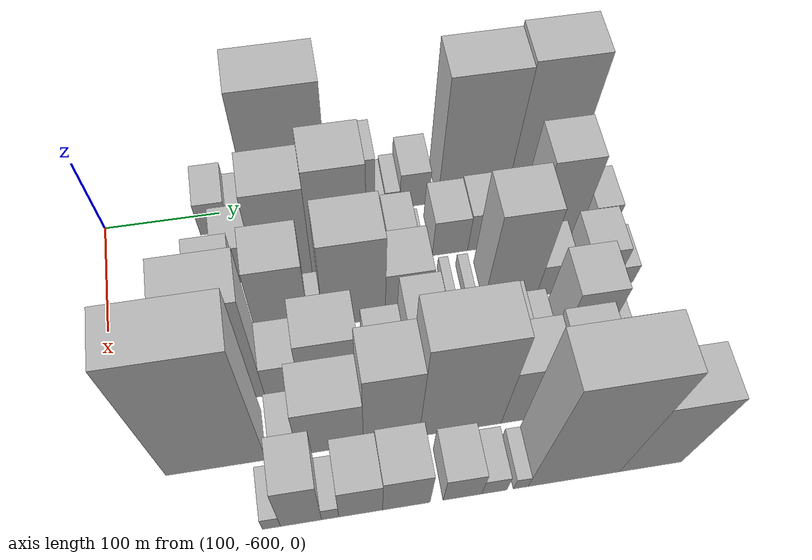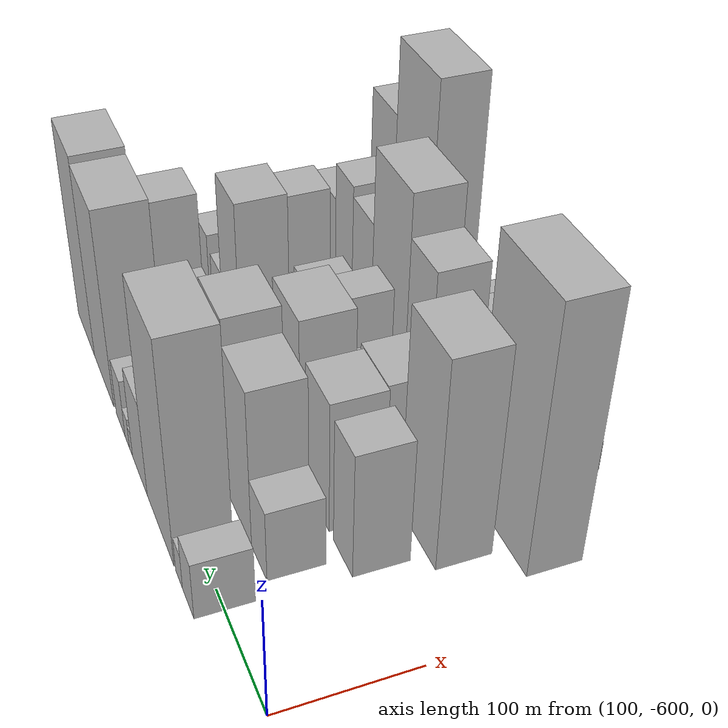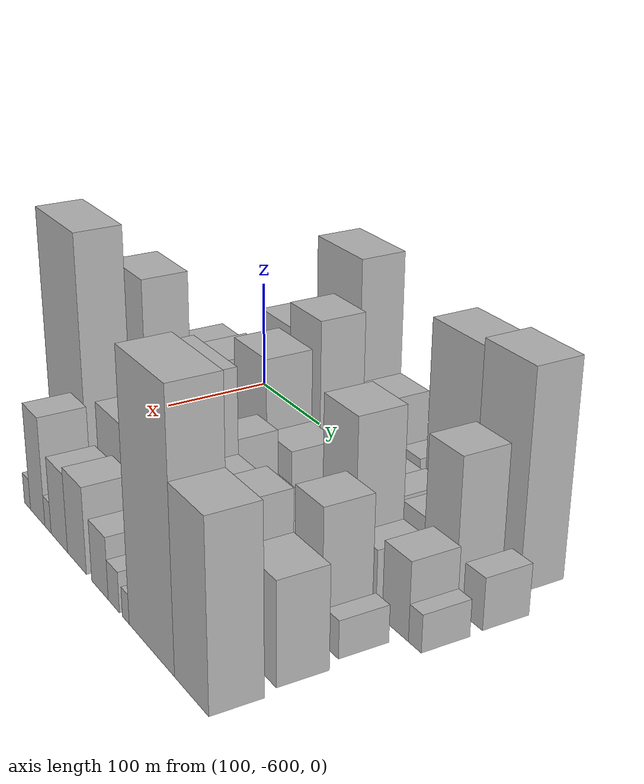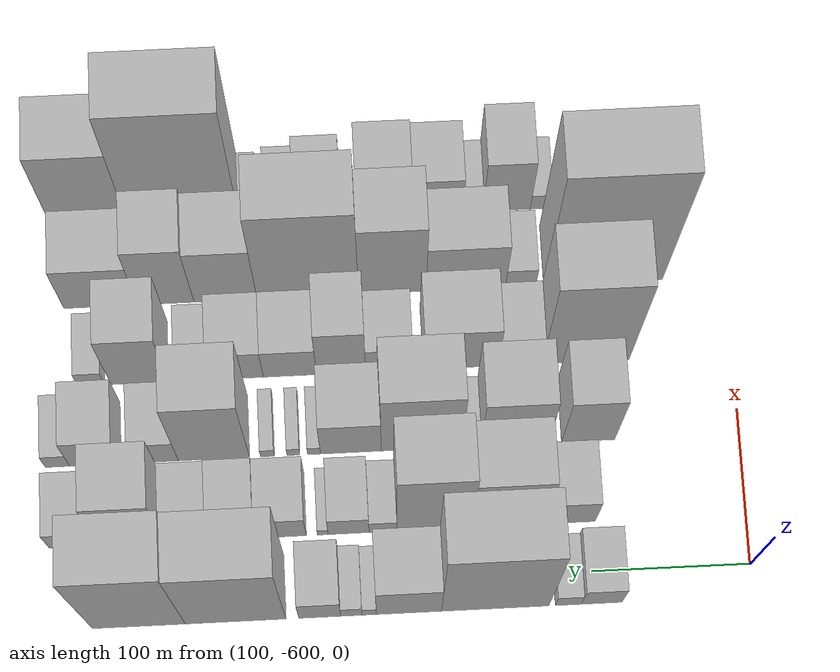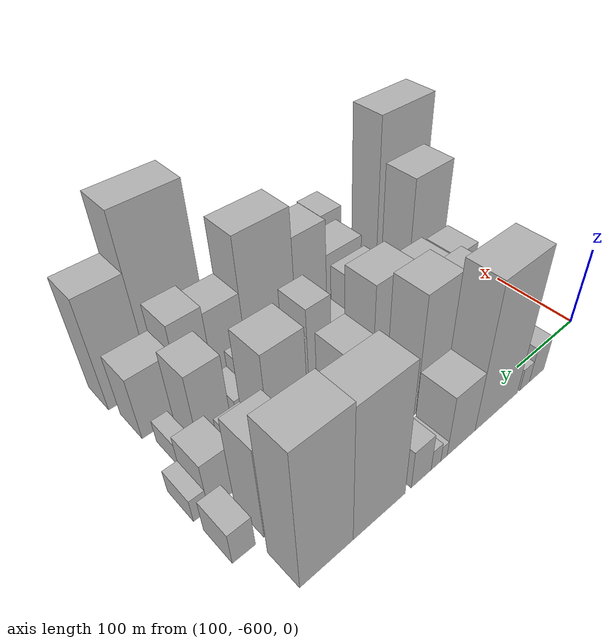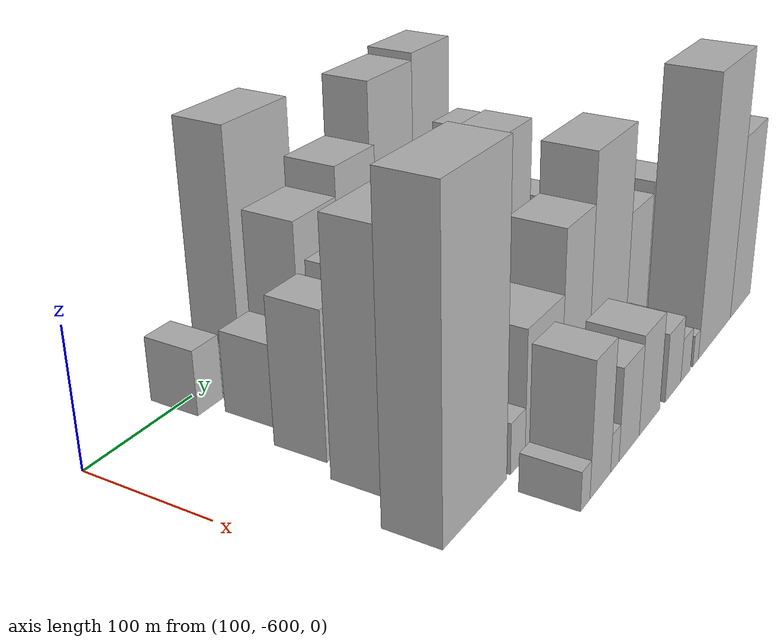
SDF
<sdf version="1.6">
 <world name="default">
  <model name="building_11">
   <static>1</static>
   <pose>100.0000 -504.7542 0 0.000000 0.000000 0.000000</pose>
   <link name="link">
    <pose>0 0 24.00 0 0 0</pose>
    <collision name="collision"><geometry><box><size>40.0000 25.6417 48.0000</size></box></geometry></collision>
    <visual name="visual">
     <cast_shadows>0</cast_shadows>
     <geometry><box><size>40.0000 25.6417 48.0000</size></box></geometry>
     <material>
      <script>
       <uri>model://HANNAS_wall/materials/scripts</uri>
       <uri>model://HANNAS_wall/materials/textures</uri>
       <name>vrc/HANNAS_wall</name>
      </script>
     </material>
    </visual>
   </link>
  </model>
  <model name="building_12">
   <static>1</static>
   <pose>100.0000 -483.8024 0 0.000000 0.000000 0.000000</pose>
   <link name="link">
    <pose>0 0 15.00 0 0 0</pose>
    <collision name="collision"><geometry><box><size>40.0000 16.2619 30.0000</size></box></geometry></collision>
    <visual name="visual">
     <cast_shadows>0</cast_shadows>
     <geometry><box><size>40.0000 16.2619 30.0000</size></box></geometry>
     <material>
      <script>
       <uri>model://HANNAS_wall/materials/scripts</uri>
       <uri>model://HANNAS_wall/materials/textures</uri>
       <name>vrc/HANNAS_wall</name>
      </script>
     </material>
    </visual>
   </link>
  </model>
  <model name="building_13">
   <static>1</static>
   <pose>100.0000 -437.9912 0 0.000000 0.000000 0.000000</pose>
   <link name="link">
    <pose>0 0 93.00 0 0 0</pose>
    <collision name="collision"><geometry><box><size>40.0000 67.3604 186.0000</size></box></geometry></collision>
    <visual name="visual">
     <cast_shadows>0</cast_shadows>
     <geometry><box><size>40.0000 67.3604 186.0000</size></box></geometry>
     <material>
      <script>
       <uri>model://HANNAS_wall/materials/scripts</uri>
       <uri>model://HANNAS_wall/materials/textures</uri>
       <name>vrc/HANNAS_wall</name>
      </script>
     </material>
    </visual>
   </link>
  </model>
  <model name="building_14">
   <static>1</static>
   <pose>100.0000 -383.9383 0 0.000000 0.000000 0.000000</pose>
   <link name="link">
    <pose>0 0 40.50 0 0 0</pose>
    <collision name="collision"><geometry><box><size>40.0000 40.7455 81.0000</size></box></geometry></collision>
    <visual name="visual">
     <cast_shadows>0</cast_shadows>
     <geometry><box><size>40.0000 40.7455 81.0000</size></box></geometry>
     <material>
      <script>
       <uri>model://HANNAS_wall/materials/scripts</uri>
       <uri>model://HANNAS_wall/materials/textures</uri>
       <name>vrc/HANNAS_wall</name>
      </script>
     </material>
    </visual>
   </link>
  </model>
  <model name="building_15">
   <static>1</static>
   <pose>100.0000 -359.0882 0 0.000000 0.000000 0.000000</pose>
   <link name="link">
    <pose>0 0 10.50 0 0 0</pose>
    <collision name="collision"><geometry><box><size>40.0000 8.9547 21.0000</size></box></geometry></collision>
    <visual name="visual">
     <cast_shadows>0</cast_shadows>
     <geometry><box><size>40.0000 8.9547 21.0000</size></box></geometry>
     <material>
      <script>
       <uri>model://HANNAS_wall/materials/scripts</uri>
       <uri>model://HANNAS_wall/materials/textures</uri>
       <name>vrc/HANNAS_wall</name>
      </script>
     </material>
    </visual>
   </link>
  </model>
  <model name="building_16">
   <static>1</static>
   <pose>100.0000 -347.9963 0 0.000000 0.000000 0.000000</pose>
   <link name="link">
    <pose>0 0 13.50 0 0 0</pose>
    <collision name="collision"><geometry><box><size>40.0000 13.2291 27.0000</size></box></geometry></collision>
    <visual name="visual">
     <cast_shadows>0</cast_shadows>
     <geometry><box><size>40.0000 13.2291 27.0000</size></box></geometry>
     <material>
      <script>
       <uri>model://HANNAS_wall/materials/scripts</uri>
       <uri>model://HANNAS_wall/materials/textures</uri>
       <name>vrc/HANNAS_wall</name>
      </script>
     </material>
    </visual>
   </link>
  </model>
  <model name="building_17">
   <static>1</static>
   <pose>100.0000 -328.2800 0 0.000000 0.000000 0.000000</pose>
   <link name="link">
    <pose>0 0 25.50 0 0 0</pose>
    <collision name="collision"><geometry><box><size>40.0000 26.2035 51.0000</size></box></geometry></collision>
    <visual name="visual">
     <cast_shadows>0</cast_shadows>
     <geometry><box><size>40.0000 26.2035 51.0000</size></box></geometry>
     <material>
      <script>
       <uri>model://HANNAS_wall/materials/scripts</uri>
       <uri>model://HANNAS_wall/materials/textures</uri>
       <name>vrc/HANNAS_wall</name>
      </script>
     </material>
    </visual>
   </link>
  </model>
  <model name="building_18">
   <static>1</static>
   <pose>100.0000 -275.7349 0 0.000000 0.000000 0.000000</pose>
   <link name="link">
    <pose>0 0 85.50 0 0 0</pose>
    <collision name="collision"><geometry><box><size>40.0000 62.8868 171.0000</size></box></geometry></collision>
    <visual name="visual">
     <cast_shadows>0</cast_shadows>
     <geometry><box><size>40.0000 62.8868 171.0000</size></box></geometry>
     <material>
      <script>
       <uri>model://HANNAS_wall/materials/scripts</uri>
       <uri>model://HANNAS_wall/materials/textures</uri>
       <name>vrc/HANNAS_wall</name>
      </script>
     </material>
    </visual>
   </link>
  </model>
  <model name="building_19">
   <static>1</static>
   <pose>100.0000 -215.3194 0 0.000000 0.000000 0.000000</pose>
   <link name="link">
    <pose>0 0 88.50 0 0 0</pose>
    <collision name="collision"><geometry><box><size>40.0000 57.9442 177.0000</size></box></geometry></collision>
    <visual name="visual">
     <cast_shadows>0</cast_shadows>
     <geometry><box><size>40.0000 57.9442 177.0000</size></box></geometry>
     <material>
      <script>
       <uri>model://HANNAS_wall/materials/scripts</uri>
       <uri>model://HANNAS_wall/materials/textures</uri>
       <name>vrc/HANNAS_wall</name>
      </script>
     </material>
    </visual>
   </link>
  </model>
  <model name="building_64">
   <static>1</static>
   <pose>152.0000 -488.7090 0 0.000000 0.000000 0.000000</pose>
   <link name="link">
    <pose>0 0 30.00 0 0 0</pose>
    <collision name="collision"><geometry><box><size>40.0000 31.3304 60.0000</size></box></geometry></collision>
    <visual name="visual">
     <cast_shadows>0</cast_shadows>
     <geometry><box><size>40.0000 31.3304 60.0000</size></box></geometry>
     <material>
      <script>
       <uri>model://HANNAS_wall/materials/scripts</uri>
       <uri>model://HANNAS_wall/materials/textures</uri>
       <name>vrc/HANNAS_wall</name>
      </script>
     </material>
    </visual>
   </link>
  </model>
  <model name="building_65">
   <static>1</static>
   <pose>152.0000 -449.5857 0 0.000000 0.000000 0.000000</pose>
   <link name="link">
    <pose>0 0 66.00 0 0 0</pose>
    <collision name="collision"><geometry><box><size>40.0000 46.9162 132.0000</size></box></geometry></collision>
    <visual name="visual">
     <cast_shadows>0</cast_shadows>
     <geometry><box><size>40.0000 46.9162 132.0000</size></box></geometry>
     <material>
      <script>
       <uri>model://HANNAS_wall/materials/scripts</uri>
       <uri>model://HANNAS_wall/materials/textures</uri>
       <name>vrc/HANNAS_wall</name>
      </script>
     </material>
    </visual>
   </link>
  </model>
  <model name="building_66">
   <static>1</static>
   <pose>152.0000 -402.5703 0 0.000000 0.000000 0.000000</pose>
   <link name="link">
    <pose>0 0 76.50 0 0 0</pose>
    <collision name="collision"><geometry><box><size>40.0000 47.1145 153.0000</size></box></geometry></collision>
    <visual name="visual">
     <cast_shadows>0</cast_shadows>
     <geometry><box><size>40.0000 47.1145 153.0000</size></box></geometry>
     <material>
      <script>
       <uri>model://HANNAS_wall/materials/scripts</uri>
       <uri>model://HANNAS_wall/materials/textures</uri>
       <name>vrc/HANNAS_wall</name>
      </script>
     </material>
    </visual>
   </link>
  </model>
  <model name="building_67">
   <static>1</static>
   <pose>152.0000 -370.2792 0 0.000000 0.000000 0.000000</pose>
   <link name="link">
    <pose>0 0 15.00 0 0 0</pose>
    <collision name="collision"><geometry><box><size>40.0000 17.4677 30.0000</size></box></geometry></collision>
    <visual name="visual">
     <cast_shadows>0</cast_shadows>
     <geometry><box><size>40.0000 17.4677 30.0000</size></box></geometry>
     <material>
      <script>
       <uri>model://HANNAS_wall/materials/scripts</uri>
       <uri>model://HANNAS_wall/materials/textures</uri>
       <name>vrc/HANNAS_wall</name>
      </script>
     </material>
    </visual>
   </link>
  </model>
  <model name="building_68">
   <static>1</static>
   <pose>152.0000 -348.6446 0 0.000000 0.000000 0.000000</pose>
   <link name="link">
    <pose>0 0 22.50 0 0 0</pose>
    <collision name="collision"><geometry><box><size>40.0000 25.8016 45.0000</size></box></geometry></collision>
    <visual name="visual">
     <cast_shadows>0</cast_shadows>
     <geometry><box><size>40.0000 25.8016 45.0000</size></box></geometry>
     <material>
      <script>
       <uri>model://HANNAS_wall/materials/scripts</uri>
       <uri>model://HANNAS_wall/materials/textures</uri>
       <name>vrc/HANNAS_wall</name>
      </script>
     </material>
    </visual>
   </link>
  </model>
  <model name="building_69">
   <static>1</static>
   <pose>152.0000 -332.3544 0 0.000000 0.000000 0.000000</pose>
   <link name="link">
    <pose>0 0 7.50 0 0 0</pose>
    <collision name="collision"><geometry><box><size>40.0000 6.7788 15.0000</size></box></geometry></collision>
    <visual name="visual">
     <cast_shadows>0</cast_shadows>
     <geometry><box><size>40.0000 6.7788 15.0000</size></box></geometry>
     <material>
      <script>
       <uri>model://HANNAS_wall/materials/scripts</uri>
       <uri>model://HANNAS_wall/materials/textures</uri>
       <name>vrc/HANNAS_wall</name>
      </script>
     </material>
    </visual>
   </link>
  </model>
  <model name="building_70">
   <static>1</static>
   <pose>152.0000 -306.4470 0 0.000000 0.000000 0.000000</pose>
   <link name="link">
    <pose>0 0 27.00 0 0 0</pose>
    <collision name="collision"><geometry><box><size>40.0000 31.0360 54.0000</size></box></geometry></collision>
    <visual name="visual">
     <cast_shadows>0</cast_shadows>
     <geometry><box><size>40.0000 31.0360 54.0000</size></box></geometry>
     <material>
      <script>
       <uri>model://HANNAS_wall/materials/scripts</uri>
       <uri>model://HANNAS_wall/materials/textures</uri>
       <name>vrc/HANNAS_wall</name>
      </script>
     </material>
    </visual>
   </link>
  </model>
  <model name="building_71">
   <static>1</static>
   <pose>152.0000 -276.3353 0 0.000000 0.000000 0.000000</pose>
   <link name="link">
    <pose>0 0 28.50 0 0 0</pose>
    <collision name="collision"><geometry><box><size>40.0000 29.1874 57.0000</size></box></geometry></collision>
    <visual name="visual">
     <cast_shadows>0</cast_shadows>
     <geometry><box><size>40.0000 29.1874 57.0000</size></box></geometry>
     <material>
      <script>
       <uri>model://HANNAS_wall/materials/scripts</uri>
       <uri>model://HANNAS_wall/materials/textures</uri>
       <name>vrc/HANNAS_wall</name>
      </script>
     </material>
    </visual>
   </link>
  </model>
  <model name="building_72">
   <static>1</static>
   <pose>152.0000 -247.3340 0 0.000000 0.000000 0.000000</pose>
   <link name="link">
    <pose>0 0 27.00 0 0 0</pose>
    <collision name="collision"><geometry><box><size>40.0000 28.8152 54.0000</size></box></geometry></collision>
    <visual name="visual">
     <cast_shadows>0</cast_shadows>
     <geometry><box><size>40.0000 28.8152 54.0000</size></box></geometry>
     <material>
      <script>
       <uri>model://HANNAS_wall/materials/scripts</uri>
       <uri>model://HANNAS_wall/materials/textures</uri>
       <name>vrc/HANNAS_wall</name>
      </script>
     </material>
    </visual>
   </link>
  </model>
  <model name="building_73">
   <static>1</static>
   <pose>152.0000 -212.7350 0 0.000000 0.000000 0.000000</pose>
   <link name="link">
    <pose>0 0 60.00 0 0 0</pose>
    <collision name="collision"><geometry><box><size>40.0000 40.3830 120.0000</size></box></geometry></collision>
    <visual name="visual">
     <cast_shadows>0</cast_shadows>
     <geometry><box><size>40.0000 40.3830 120.0000</size></box></geometry>
     <material>
      <script>
       <uri>model://HANNAS_wall/materials/scripts</uri>
       <uri>model://HANNAS_wall/materials/textures</uri>
       <name>vrc/HANNAS_wall</name>
      </script>
     </material>
    </visual>
   </link>
  </model>
  <model name="building_74">
   <static>1</static>
   <pose>152.0000 -171.8564 0 0.000000 0.000000 0.000000</pose>
   <link name="link">
    <pose>0 0 21.00 0 0 0</pose>
    <collision name="collision"><geometry><box><size>40.0000 23.3743 42.0000</size></box></geometry></collision>
    <visual name="visual">
     <cast_shadows>0</cast_shadows>
     <geometry><box><size>40.0000 23.3743 42.0000</size></box></geometry>
     <material>
      <script>
       <uri>model://HANNAS_wall/materials/scripts</uri>
       <uri>model://HANNAS_wall/materials/textures</uri>
       <name>vrc/HANNAS_wall</name>
      </script>
     </material>
    </visual>
   </link>
  </model>
  <model name="building_114">
   <static>1</static>
   <pose>204.0000 -503.4940 0 0.000000 0.000000 0.000000</pose>
   <link name="link">
    <pose>0 0 52.50 0 0 0</pose>
    <collision name="collision"><geometry><box><size>40.0000 33.9044 105.0000</size></box></geometry></collision>
    <visual name="visual">
     <cast_shadows>0</cast_shadows>
     <geometry><box><size>40.0000 33.9044 105.0000</size></box></geometry>
     <material>
      <script>
       <uri>model://HANNAS_wall/materials/scripts</uri>
       <uri>model://HANNAS_wall/materials/textures</uri>
       <name>vrc/HANNAS_wall</name>
      </script>
     </material>
    </visual>
   </link>
  </model>
  <model name="building_115">
   <static>1</static>
   <pose>204.0000 -456.6687 0 0.000000 0.000000 0.000000</pose>
   <link name="link">
    <pose>0 0 55.50 0 0 0</pose>
    <collision name="collision"><geometry><box><size>40.0000 43.7461 111.0000</size></box></geometry></collision>
    <visual name="visual">
     <cast_shadows>0</cast_shadows>
     <geometry><box><size>40.0000 43.7461 111.0000</size></box></geometry>
     <material>
      <script>
       <uri>model://HANNAS_wall/materials/scripts</uri>
       <uri>model://HANNAS_wall/materials/textures</uri>
       <name>vrc/HANNAS_wall</name>
      </script>
     </material>
    </visual>
   </link>
  </model>
  <model name="building_116">
   <static>1</static>
   <pose>204.0000 -428.9099 0 0.000000 0.000000 0.000000</pose>
   <link name="link">
    <pose>0 0 12.00 0 0 0</pose>
    <collision name="collision"><geometry><box><size>40.0000 11.7714 24.0000</size></box></geometry></collision>
    <visual name="visual">
     <cast_shadows>0</cast_shadows>
     <geometry><box><size>40.0000 11.7714 24.0000</size></box></geometry>
     <material>
      <script>
       <uri>model://HANNAS_wall/materials/scripts</uri>
       <uri>model://HANNAS_wall/materials/textures</uri>
       <name>vrc/HANNAS_wall</name>
      </script>
     </material>
    </visual>
   </link>
  </model>
  <model name="building_117">
   <static>1</static>
   <pose>204.0000 -397.3431 0 0.000000 0.000000 0.000000</pose>
   <link name="link">
    <pose>0 0 67.50 0 0 0</pose>
    <collision name="collision"><geometry><box><size>40.0000 51.3622 135.0000</size></box></geometry></collision>
    <visual name="visual">
     <cast_shadows>0</cast_shadows>
     <geometry><box><size>40.0000 51.3622 135.0000</size></box></geometry>
     <material>
      <script>
       <uri>model://HANNAS_wall/materials/scripts</uri>
       <uri>model://HANNAS_wall/materials/textures</uri>
       <name>vrc/HANNAS_wall</name>
      </script>
     </material>
    </visual>
   </link>
  </model>
  <model name="building_118">
   <static>1</static>
   <pose>204.0000 -352.3898 0 0.000000 0.000000 0.000000</pose>
   <link name="link">
    <pose>0 0 37.50 0 0 0</pose>
    <collision name="collision"><geometry><box><size>40.0000 38.5446 75.0000</size></box></geometry></collision>
    <visual name="visual">
     <cast_shadows>0</cast_shadows>
     <geometry><box><size>40.0000 38.5446 75.0000</size></box></geometry>
     <material>
      <script>
       <uri>model://HANNAS_wall/materials/scripts</uri>
       <uri>model://HANNAS_wall/materials/textures</uri>
       <name>vrc/HANNAS_wall</name>
      </script>
     </material>
    </visual>
   </link>
  </model>
  <model name="building_119">
   <static>1</static>
   <pose>204.0000 -329.0386 0 0.000000 0.000000 0.000000</pose>
   <link name="link">
    <pose>0 0 9.00 0 0 0</pose>
    <collision name="collision"><geometry><box><size>40.0000 8.1577 18.0000</size></box></geometry></collision>
    <visual name="visual">
     <cast_shadows>0</cast_shadows>
     <geometry><box><size>40.0000 8.1577 18.0000</size></box></geometry>
     <material>
      <script>
       <uri>model://HANNAS_wall/materials/scripts</uri>
       <uri>model://HANNAS_wall/materials/textures</uri>
       <name>vrc/HANNAS_wall</name>
      </script>
     </material>
    </visual>
   </link>
  </model>
  <model name="building_120">
   <static>1</static>
   <pose>204.0000 -315.9089 0 0.000000 0.000000 0.000000</pose>
   <link name="link">
    <pose>0 0 9.00 0 0 0</pose>
    <collision name="collision"><geometry><box><size>40.0000 8.1019 18.0000</size></box></geometry></collision>
    <visual name="visual">
     <cast_shadows>0</cast_shadows>
     <geometry><box><size>40.0000 8.1019 18.0000</size></box></geometry>
     <material>
      <script>
       <uri>model://HANNAS_wall/materials/scripts</uri>
       <uri>model://HANNAS_wall/materials/textures</uri>
       <name>vrc/HANNAS_wall</name>
      </script>
     </material>
    </visual>
   </link>
  </model>
  <model name="building_121">
   <static>1</static>
   <pose>204.0000 -299.4311 0 0.000000 0.000000 0.000000</pose>
   <link name="link">
    <pose>0 0 9.00 0 0 0</pose>
    <collision name="collision"><geometry><box><size>40.0000 8.8535 18.0000</size></box></geometry></collision>
    <visual name="visual">
     <cast_shadows>0</cast_shadows>
     <geometry><box><size>40.0000 8.8535 18.0000</size></box></geometry>
     <material>
      <script>
       <uri>model://HANNAS_wall/materials/scripts</uri>
       <uri>model://HANNAS_wall/materials/textures</uri>
       <name>vrc/HANNAS_wall</name>
      </script>
     </material>
    </visual>
   </link>
  </model>
  <model name="building_122">
   <static>1</static>
   <pose>204.0000 -265.4091 0 0.000000 0.000000 0.000000</pose>
   <link name="link">
    <pose>0 0 70.50 0 0 0</pose>
    <collision name="collision"><geometry><box><size>40.0000 45.1905 141.0000</size></box></geometry></collision>
    <visual name="visual">
     <cast_shadows>0</cast_shadows>
     <geometry><box><size>40.0000 45.1905 141.0000</size></box></geometry>
     <material>
      <script>
       <uri>model://HANNAS_wall/materials/scripts</uri>
       <uri>model://HANNAS_wall/materials/textures</uri>
       <name>vrc/HANNAS_wall</name>
      </script>
     </material>
    </visual>
   </link>
  </model>
  <model name="building_123">
   <static>1</static>
   <pose>204.0000 -228.6598 0 0.000000 0.000000 0.000000</pose>
   <link name="link">
    <pose>0 0 25.50 0 0 0</pose>
    <collision name="collision"><geometry><box><size>40.0000 28.3082 51.0000</size></box></geometry></collision>
    <visual name="visual">
     <cast_shadows>0</cast_shadows>
     <geometry><box><size>40.0000 28.3082 51.0000</size></box></geometry>
     <material>
      <script>
       <uri>model://HANNAS_wall/materials/scripts</uri>
       <uri>model://HANNAS_wall/materials/textures</uri>
       <name>vrc/HANNAS_wall</name>
      </script>
     </material>
    </visual>
   </link>
  </model>
  <model name="building_124">
   <static>1</static>
   <pose>204.0000 -190.2039 0 0.000000 0.000000 0.000000</pose>
   <link name="link">
    <pose>0 0 31.50 0 0 0</pose>
    <collision name="collision"><geometry><box><size>40.0000 32.6035 63.0000</size></box></geometry></collision>
    <visual name="visual">
     <cast_shadows>0</cast_shadows>
     <geometry><box><size>40.0000 32.6035 63.0000</size></box></geometry>
     <material>
      <script>
       <uri>model://HANNAS_wall/materials/scripts</uri>
       <uri>model://HANNAS_wall/materials/textures</uri>
       <name>vrc/HANNAS_wall</name>
      </script>
     </material>
    </visual>
   </link>
  </model>
  <model name="building_125">
   <static>1</static>
   <pose>204.0000 -166.1738 0 0.000000 0.000000 0.000000</pose>
   <link name="link">
    <pose>0 0 15.00 0 0 0</pose>
    <collision name="collision"><geometry><box><size>40.0000 15.4566 30.0000</size></box></geometry></collision>
    <visual name="visual">
     <cast_shadows>0</cast_shadows>
     <geometry><box><size>40.0000 15.4566 30.0000</size></box></geometry>
     <material>
      <script>
       <uri>model://HANNAS_wall/materials/scripts</uri>
       <uri>model://HANNAS_wall/materials/textures</uri>
       <name>vrc/HANNAS_wall</name>
      </script>
     </material>
    </visual>
   </link>
  </model>
  <model name="building_167">
   <static>1</static>
   <pose>256.0000 -505.4603 0 0.000000 0.000000 0.000000</pose>
   <link name="link">
    <pose>0 0 87.00 0 0 0</pose>
    <collision name="collision"><geometry><box><size>40.0000 56.0555 174.0000</size></box></geometry></collision>
    <visual name="visual">
     <cast_shadows>0</cast_shadows>
     <geometry><box><size>40.0000 56.0555 174.0000</size></box></geometry>
     <material>
      <script>
       <uri>model://HANNAS_wall/materials/scripts</uri>
       <uri>model://HANNAS_wall/materials/textures</uri>
       <name>vrc/HANNAS_wall</name>
      </script>
     </material>
    </visual>
   </link>
  </model>
  <model name="building_168">
   <static>1</static>
   <pose>256.0000 -463.3802 0 0.000000 0.000000 0.000000</pose>
   <link name="link">
    <pose>0 0 27.00 0 0 0</pose>
    <collision name="collision"><geometry><box><size>40.0000 28.1047 54.0000</size></box></geometry></collision>
    <visual name="visual">
     <cast_shadows>0</cast_shadows>
     <geometry><box><size>40.0000 28.1047 54.0000</size></box></geometry>
     <material>
      <script>
       <uri>model://HANNAS_wall/materials/scripts</uri>
       <uri>model://HANNAS_wall/materials/textures</uri>
       <name>vrc/HANNAS_wall</name>
      </script>
     </material>
    </visual>
   </link>
  </model>
  <model name="building_169">
   <static>1</static>
   <pose>256.0000 -425.2638 0 0.000000 0.000000 0.000000</pose>
   <link name="link">
    <pose>0 0 43.50 0 0 0</pose>
    <collision name="collision"><geometry><box><size>40.0000 48.1281 87.0000</size></box></geometry></collision>
    <visual name="visual">
     <cast_shadows>0</cast_shadows>
     <geometry><box><size>40.0000 48.1281 87.0000</size></box></geometry>
     <material>
      <script>
       <uri>model://HANNAS_wall/materials/scripts</uri>
       <uri>model://HANNAS_wall/materials/textures</uri>
       <name>vrc/HANNAS_wall</name>
      </script>
     </material>
    </visual>
   </link>
  </model>
  <model name="building_170">
   <static>1</static>
   <pose>256.0000 -379.2155 0 0.000000 0.000000 0.000000</pose>
   <link name="link">
    <pose>0 0 25.50 0 0 0</pose>
    <collision name="collision"><geometry><box><size>40.0000 29.9685 51.0000</size></box></geometry></collision>
    <visual name="visual">
     <cast_shadows>0</cast_shadows>
     <geometry><box><size>40.0000 29.9685 51.0000</size></box></geometry>
     <material>
      <script>
       <uri>model://HANNAS_wall/materials/scripts</uri>
       <uri>model://HANNAS_wall/materials/textures</uri>
       <name>vrc/HANNAS_wall</name>
      </script>
     </material>
    </visual>
   </link>
  </model>
  <model name="building_171">
   <static>1</static>
   <pose>256.0000 -348.5457 0 0.000000 0.000000 0.000000</pose>
   <link name="link">
    <pose>0 0 48.00 0 0 0</pose>
    <collision name="collision"><geometry><box><size>40.0000 31.3711 96.0000</size></box></geometry></collision>
    <visual name="visual">
     <cast_shadows>0</cast_shadows>
     <geometry><box><size>40.0000 31.3711 96.0000</size></box></geometry>
     <material>
      <script>
       <uri>model://HANNAS_wall/materials/scripts</uri>
       <uri>model://HANNAS_wall/materials/textures</uri>
       <name>vrc/HANNAS_wall</name>
      </script>
     </material>
    </visual>
   </link>
  </model>
  <model name="building_172">
   <static>1</static>
   <pose>256.0000 -315.7931 0 0.000000 0.000000 0.000000</pose>
   <link name="link">
    <pose>0 0 30.00 0 0 0</pose>
    <collision name="collision"><geometry><box><size>40.0000 34.1340 60.0000</size></box></geometry></collision>
    <visual name="visual">
     <cast_shadows>0</cast_shadows>
     <geometry><box><size>40.0000 34.1340 60.0000</size></box></geometry>
     <material>
      <script>
       <uri>model://HANNAS_wall/materials/scripts</uri>
       <uri>model://HANNAS_wall/materials/textures</uri>
       <name>vrc/HANNAS_wall</name>
      </script>
     </material>
    </visual>
   </link>
  </model>
  <model name="building_173">
   <static>1</static>
   <pose>256.0000 -281.9143 0 0.000000 0.000000 0.000000</pose>
   <link name="link">
    <pose>0 0 30.00 0 0 0</pose>
    <collision name="collision"><geometry><box><size>40.0000 33.6235 60.0000</size></box></geometry></collision>
    <visual name="visual">
     <cast_shadows>0</cast_shadows>
     <geometry><box><size>40.0000 33.6235 60.0000</size></box></geometry>
     <material>
      <script>
       <uri>model://HANNAS_wall/materials/scripts</uri>
       <uri>model://HANNAS_wall/materials/textures</uri>
       <name>vrc/HANNAS_wall</name>
      </script>
     </material>
    </visual>
   </link>
  </model>
  <model name="building_174">
   <static>1</static>
   <pose>256.0000 -254.5542 0 0.000000 0.000000 0.000000</pose>
   <link name="link">
    <pose>0 0 19.50 0 0 0</pose>
    <collision name="collision"><geometry><box><size>40.0000 21.0967 39.0000</size></box></geometry></collision>
    <visual name="visual">
     <cast_shadows>0</cast_shadows>
     <geometry><box><size>40.0000 21.0967 39.0000</size></box></geometry>
     <material>
      <script>
       <uri>model://HANNAS_wall/materials/scripts</uri>
       <uri>model://HANNAS_wall/materials/textures</uri>
       <name>vrc/HANNAS_wall</name>
      </script>
     </material>
    </visual>
   </link>
  </model>
  <model name="building_175">
   <static>1</static>
   <pose>256.0000 -219.5533 0 0.000000 0.000000 0.000000</pose>
   <link name="link">
    <pose>0 0 52.50 0 0 0</pose>
    <collision name="collision"><geometry><box><size>40.0000 36.9052 105.0000</size></box></geometry></collision>
    <visual name="visual">
     <cast_shadows>0</cast_shadows>
     <geometry><box><size>40.0000 36.9052 105.0000</size></box></geometry>
     <material>
      <script>
       <uri>model://HANNAS_wall/materials/scripts</uri>
       <uri>model://HANNAS_wall/materials/textures</uri>
       <name>vrc/HANNAS_wall</name>
      </script>
     </material>
    </visual>
   </link>
  </model>
  <model name="building_176">
   <static>1</static>
   <pose>256.0000 -188.4569 0 0.000000 0.000000 0.000000</pose>
   <link name="link">
    <pose>0 0 15.00 0 0 0</pose>
    <collision name="collision"><geometry><box><size>40.0000 17.2875 30.0000</size></box></geometry></collision>
    <visual name="visual">
     <cast_shadows>0</cast_shadows>
     <geometry><box><size>40.0000 17.2875 30.0000</size></box></geometry>
     <material>
      <script>
       <uri>model://HANNAS_wall/materials/scripts</uri>
       <uri>model://HANNAS_wall/materials/textures</uri>
       <name>vrc/HANNAS_wall</name>
      </script>
     </material>
    </visual>
   </link>
  </model>
  <model name="building_216">
   <static>1</static>
   <pose>308.0000 -520.3965 0 0.000000 0.000000 0.000000</pose>
   <link name="link">
    <pose>0 0 109.50 0 0 0</pose>
    <collision name="collision"><geometry><box><size>40.0000 76.9490 219.0000</size></box></geometry></collision>
    <visual name="visual">
     <cast_shadows>0</cast_shadows>
     <geometry><box><size>40.0000 76.9490 219.0000</size></box></geometry>
     <material>
      <script>
       <uri>model://HANNAS_wall/materials/scripts</uri>
       <uri>model://HANNAS_wall/materials/textures</uri>
       <name>vrc/HANNAS_wall</name>
      </script>
     </material>
    </visual>
   </link>
  </model>
  <model name="building_217">
   <static>1</static>
   <pose>308.0000 -467.0287 0 0.000000 0.000000 0.000000</pose>
   <link name="link">
    <pose>0 0 18.00 0 0 0</pose>
    <collision name="collision"><geometry><box><size>40.0000 19.7864 36.0000</size></box></geometry></collision>
    <visual name="visual">
     <cast_shadows>0</cast_shadows>
     <geometry><box><size>40.0000 19.7864 36.0000</size></box></geometry>
     <material>
      <script>
       <uri>model://HANNAS_wall/materials/scripts</uri>
       <uri>model://HANNAS_wall/materials/textures</uri>
       <name>vrc/HANNAS_wall</name>
      </script>
     </material>
    </visual>
   </link>
  </model>
  <model name="building_218">
   <static>1</static>
   <pose>308.0000 -431.4765 0 0.000000 0.000000 0.000000</pose>
   <link name="link">
    <pose>0 0 45.00 0 0 0</pose>
    <collision name="collision"><geometry><box><size>40.0000 51.3180 90.0000</size></box></geometry></collision>
    <visual name="visual">
     <cast_shadows>0</cast_shadows>
     <geometry><box><size>40.0000 51.3180 90.0000</size></box></geometry>
     <material>
      <script>
       <uri>model://HANNAS_wall/materials/scripts</uri>
       <uri>model://HANNAS_wall/materials/textures</uri>
       <name>vrc/HANNAS_wall</name>
      </script>
     </material>
    </visual>
   </link>
  </model>
  <model name="building_219">
   <static>1</static>
   <pose>308.0000 -383.9578 0 0.000000 0.000000 0.000000</pose>
   <link name="link">
    <pose>0 0 67.50 0 0 0</pose>
    <collision name="collision"><geometry><box><size>40.0000 43.7195 135.0000</size></box></geometry></collision>
    <visual name="visual">
     <cast_shadows>0</cast_shadows>
     <geometry><box><size>40.0000 43.7195 135.0000</size></box></geometry>
     <material>
      <script>
       <uri>model://HANNAS_wall/materials/scripts</uri>
       <uri>model://HANNAS_wall/materials/textures</uri>
       <name>vrc/HANNAS_wall</name>
      </script>
     </material>
    </visual>
   </link>
  </model>
  <model name="building_220">
   <static>1</static>
   <pose>308.0000 -329.3188 0 0.000000 0.000000 0.000000</pose>
   <link name="link">
    <pose>0 0 85.50 0 0 0</pose>
    <collision name="collision"><geometry><box><size>40.0000 65.5583 171.0000</size></box></geometry></collision>
    <visual name="visual">
     <cast_shadows>0</cast_shadows>
     <geometry><box><size>40.0000 65.5583 171.0000</size></box></geometry>
     <material>
      <script>
       <uri>model://HANNAS_wall/materials/scripts</uri>
       <uri>model://HANNAS_wall/materials/textures</uri>
       <name>vrc/HANNAS_wall</name>
      </script>
     </material>
    </visual>
   </link>
  </model>
  <model name="building_221">
   <static>1</static>
   <pose>308.0000 -276.1619 0 0.000000 0.000000 0.000000</pose>
   <link name="link">
    <pose>0 0 52.50 0 0 0</pose>
    <collision name="collision"><geometry><box><size>40.0000 40.7556 105.0000</size></box></geometry></collision>
    <visual name="visual">
     <cast_shadows>0</cast_shadows>
     <geometry><box><size>40.0000 40.7556 105.0000</size></box></geometry>
     <material>
      <script>
       <uri>model://HANNAS_wall/materials/scripts</uri>
       <uri>model://HANNAS_wall/materials/textures</uri>
       <name>vrc/HANNAS_wall</name>
      </script>
     </material>
    </visual>
   </link>
  </model>
  <model name="building_222">
   <static>1</static>
   <pose>308.0000 -237.5177 0 0.000000 0.000000 0.000000</pose>
   <link name="link">
    <pose>0 0 57.00 0 0 0</pose>
    <collision name="collision"><geometry><box><size>40.0000 36.5327 114.0000</size></box></geometry></collision>
    <visual name="visual">
     <cast_shadows>0</cast_shadows>
     <geometry><box><size>40.0000 36.5327 114.0000</size></box></geometry>
     <material>
      <script>
       <uri>model://HANNAS_wall/materials/scripts</uri>
       <uri>model://HANNAS_wall/materials/textures</uri>
       <name>vrc/HANNAS_wall</name>
      </script>
     </material>
    </visual>
   </link>
  </model>
  <model name="building_223">
   <static>1</static>
   <pose>308.0000 -195.4968 0 0.000000 0.000000 0.000000</pose>
   <link name="link">
    <pose>0 0 40.50 0 0 0</pose>
    <collision name="collision"><geometry><box><size>40.0000 47.5092 81.0000</size></box></geometry></collision>
    <visual name="visual">
     <cast_shadows>0</cast_shadows>
     <geometry><box><size>40.0000 47.5092 81.0000</size></box></geometry>
     <material>
      <script>
       <uri>model://HANNAS_wall/materials/scripts</uri>
       <uri>model://HANNAS_wall/materials/textures</uri>
       <name>vrc/HANNAS_wall</name>
      </script>
     </material>
    </visual>
   </link>
  </model>
  <model name="building_261">
   <static>1</static>
   <pose>360.0000 -483.2092 0 0.000000 0.000000 0.000000</pose>
   <link name="link">
    <pose>0 0 13.50 0 0 0</pose>
    <collision name="collision"><geometry><box><size>40.0000 13.4415 27.0000</size></box></geometry></collision>
    <visual name="visual">
     <cast_shadows>0</cast_shadows>
     <geometry><box><size>40.0000 13.4415 27.0000</size></box></geometry>
     <material>
      <script>
       <uri>model://HANNAS_wall/materials/scripts</uri>
       <uri>model://HANNAS_wall/materials/textures</uri>
       <name>vrc/HANNAS_wall</name>
      </script>
     </material>
    </visual>
   </link>
  </model>
  <model name="building_262">
   <static>1</static>
   <pose>360.0000 -461.0731 0 0.000000 0.000000 0.000000</pose>
   <link name="link">
    <pose>0 0 46.50 0 0 0</pose>
    <collision name="collision"><geometry><box><size>40.0000 30.8306 93.0000</size></box></geometry></collision>
    <visual name="visual">
     <cast_shadows>0</cast_shadows>
     <geometry><box><size>40.0000 30.8306 93.0000</size></box></geometry>
     <material>
      <script>
       <uri>model://HANNAS_wall/materials/scripts</uri>
       <uri>model://HANNAS_wall/materials/textures</uri>
       <name>vrc/HANNAS_wall</name>
      </script>
     </material>
    </visual>
   </link>
  </model>
  <model name="building_263">
   <static>1</static>
   <pose>360.0000 -439.1298 0 0.000000 0.000000 0.000000</pose>
   <link name="link">
    <pose>0 0 13.50 0 0 0</pose>
    <collision name="collision"><geometry><box><size>40.0000 13.0559 27.0000</size></box></geometry></collision>
    <visual name="visual">
     <cast_shadows>0</cast_shadows>
     <geometry><box><size>40.0000 13.0559 27.0000</size></box></geometry>
     <material>
      <script>
       <uri>model://HANNAS_wall/materials/scripts</uri>
       <uri>model://HANNAS_wall/materials/textures</uri>
       <name>vrc/HANNAS_wall</name>
      </script>
     </material>
    </visual>
   </link>
  </model>
  <model name="building_264">
   <static>1</static>
   <pose>360.0000 -415.9835 0 0.000000 0.000000 0.000000</pose>
   <link name="link">
    <pose>0 0 33.00 0 0 0</pose>
    <collision name="collision"><geometry><box><size>40.0000 33.2368 66.0000</size></box></geometry></collision>
    <visual name="visual">
     <cast_shadows>0</cast_shadows>
     <geometry><box><size>40.0000 33.2368 66.0000</size></box></geometry>
     <material>
      <script>
       <uri>model://HANNAS_wall/materials/scripts</uri>
       <uri>model://HANNAS_wall/materials/textures</uri>
       <name>vrc/HANNAS_wall</name>
      </script>
     </material>
    </visual>
   </link>
  </model>
  <model name="building_265">
   <static>1</static>
   <pose>360.0000 -381.2287 0 0.000000 0.000000 0.000000</pose>
   <link name="link">
    <pose>0 0 36.00 0 0 0</pose>
    <collision name="collision"><geometry><box><size>40.0000 36.2727 72.0000</size></box></geometry></collision>
    <visual name="visual">
     <cast_shadows>0</cast_shadows>
     <geometry><box><size>40.0000 36.2727 72.0000</size></box></geometry>
     <material>
      <script>
       <uri>model://HANNAS_wall/materials/scripts</uri>
       <uri>model://HANNAS_wall/materials/textures</uri>
       <name>vrc/HANNAS_wall</name>
      </script>
     </material>
    </visual>
   </link>
  </model>
  <model name="building_266">
   <static>1</static>
   <pose>360.0000 -338.1346 0 0.000000 0.000000 0.000000</pose>
   <link name="link">
    <pose>0 0 25.50 0 0 0</pose>
    <collision name="collision"><geometry><box><size>40.0000 29.9154 51.0000</size></box></geometry></collision>
    <visual name="visual">
     <cast_shadows>0</cast_shadows>
     <geometry><box><size>40.0000 29.9154 51.0000</size></box></geometry>
     <material>
      <script>
       <uri>model://HANNAS_wall/materials/scripts</uri>
       <uri>model://HANNAS_wall/materials/textures</uri>
       <name>vrc/HANNAS_wall</name>
      </script>
     </material>
    </visual>
   </link>
  </model>
  <model name="building_267">
   <static>1</static>
   <pose>360.0000 -313.4503 0 0.000000 0.000000 0.000000</pose>
   <link name="link">
    <pose>0 0 16.50 0 0 0</pose>
    <collision name="collision"><geometry><box><size>40.0000 19.4532 33.0000</size></box></geometry></collision>
    <visual name="visual">
     <cast_shadows>0</cast_shadows>
     <geometry><box><size>40.0000 19.4532 33.0000</size></box></geometry>
     <material>
      <script>
       <uri>model://HANNAS_wall/materials/scripts</uri>
       <uri>model://HANNAS_wall/materials/textures</uri>
       <name>vrc/HANNAS_wall</name>
      </script>
     </material>
    </visual>
   </link>
  </model>
  <model name="building_268">
   <static>1</static>
   <pose>360.0000 -292.9397 0 0.000000 0.000000 0.000000</pose>
   <link name="link">
    <pose>0 0 12.00 0 0 0</pose>
    <collision name="collision"><geometry><box><size>40.0000 11.5679 24.0000</size></box></geometry></collision>
    <visual name="visual">
     <cast_shadows>0</cast_shadows>
     <geometry><box><size>40.0000 11.5679 24.0000</size></box></geometry>
     <material>
      <script>
       <uri>model://HANNAS_wall/materials/scripts</uri>
       <uri>model://HANNAS_wall/materials/textures</uri>
       <name>vrc/HANNAS_wall</name>
      </script>
     </material>
    </visual>
   </link>
  </model>
  <model name="building_269">
   <static>1</static>
   <pose>360.0000 -251.1755 0 0.000000 0.000000 0.000000</pose>
   <link name="link">
    <pose>0 0 105.00 0 0 0</pose>
    <collision name="collision"><geometry><box><size>40.0000 71.9604 210.0000</size></box></geometry></collision>
    <visual name="visual">
     <cast_shadows>0</cast_shadows>
     <geometry><box><size>40.0000 71.9604 210.0000</size></box></geometry>
     <material>
      <script>
       <uri>model://HANNAS_wall/materials/scripts</uri>
       <uri>model://HANNAS_wall/materials/textures</uri>
       <name>vrc/HANNAS_wall</name>
      </script>
     </material>
    </visual>
   </link>
  </model>
  <model name="building_270">
   <static>1</static>
   <pose>360.0000 -190.5703 0 0.000000 0.000000 0.000000</pose>
   <link name="link">
    <pose>0 0 72.00 0 0 0</pose>
    <collision name="collision"><geometry><box><size>40.0000 49.2501 144.0000</size></box></geometry></collision>
    <visual name="visual">
     <cast_shadows>0</cast_shadows>
     <geometry><box><size>40.0000 49.2501 144.0000</size></box></geometry>
     <material>
      <script>
       <uri>model://HANNAS_wall/materials/scripts</uri>
       <uri>model://HANNAS_wall/materials/textures</uri>
       <name>vrc/HANNAS_wall</name>
      </script>
     </material>
    </visual>
   </link>
  </model>
 </world>
</sdf>
